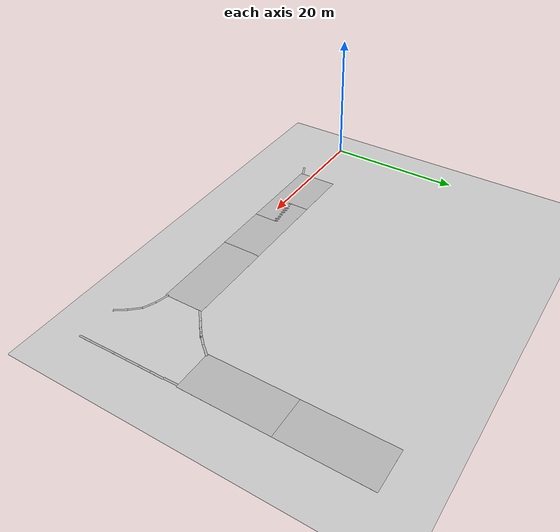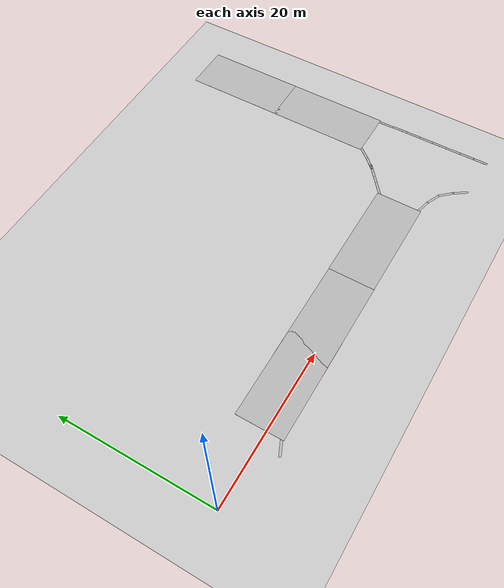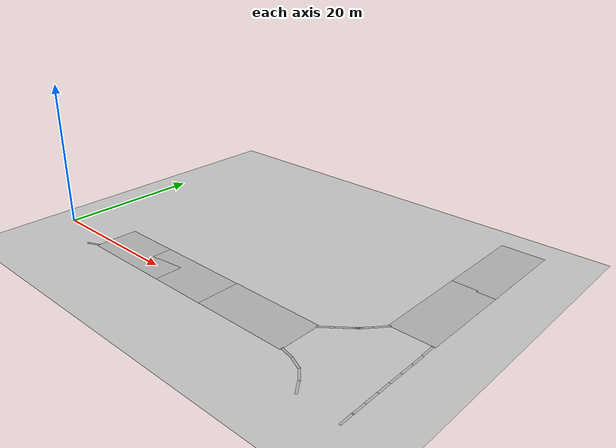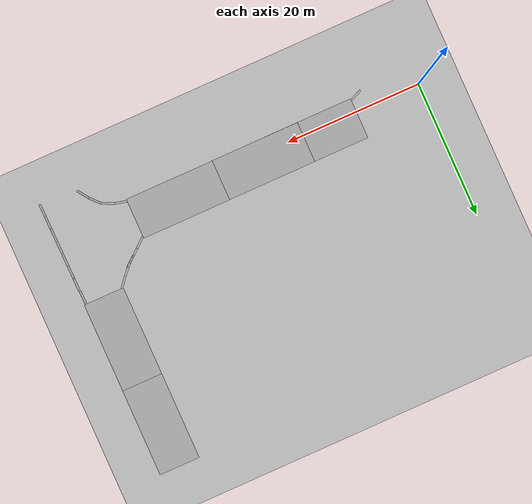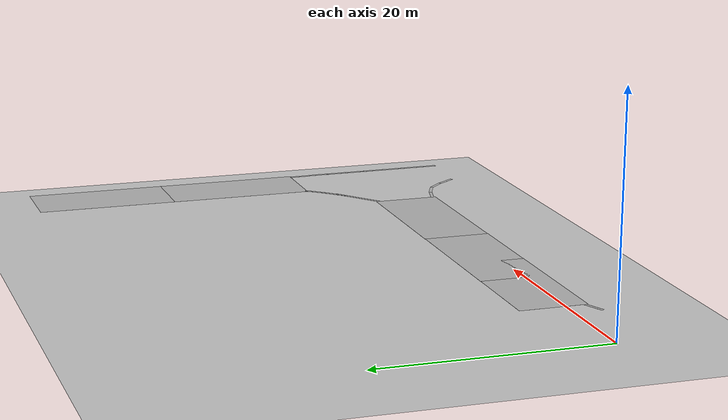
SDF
<sdf version="1.6">
 <world name="default">
  <model name="ground_plane">
   <pose>0 0 -1 0 -0 0</pose>
   <static>1</static>
   <link name="link">
    <collision name="collision">
     <geometry><plane><normal>0 0 1</normal><size>100 100</size></plane></geometry>
     <surface><friction><ode><mu>100</mu><mu2>50</mu2></ode></friction></surface>
    </collision>
    <visual name="visual">
     <cast_shadows>0</cast_shadows>
     <geometry><plane><normal>0 0 1</normal><size>100 100</size></plane></geometry>
     <material>
      <script><uri>file://media/materials/scripts/gazebo.material</uri><name>Gazebo/Grey</name></script>
     </material>
    </visual>
   </link>
  </model>
  <model name="road_4_clone_clone">
   <link name="body">
    <visual name="visual">
     <geometry><mesh><uri>file://road.dae</uri></mesh></geometry>
     <material><shader type="pixel"/></material>
    </visual>
   </link>
   <static>1</static>
   <pose>37.3595 0.974527 0 0 -0 1.57</pose>
  </model>
  <model name="road_4_clone_clone_0">
   <link name="body">
    <visual name="visual">
     <geometry><mesh><uri>file://road.dae</uri></mesh></geometry>
     <material><shader type="pixel"/></material>
    </visual>
   </link>
   <static>1</static>
   <pose>24.265 0.952006 0 0 -0 1.57</pose>
  </model>
  <model name="road_4_clone_clone_1">
   <link name="body">
    <visual name="visual">
     <geometry><mesh><uri>file://road.dae</uri></mesh></geometry>
     <material><shader type="pixel"/></material>
    </visual>
   </link>
   <static>1</static>
   <pose>16.1017 0.938572 0 0 -0 1.57</pose>
  </model>
  <model name="road_4_clone_2">
   <link name="body">
    <visual name="visual">
     <geometry><mesh><uri>file://road.dae</uri></mesh></geometry>
     <material><shader type="pixel"/></material>
    </visual>
   </link>
   <static>1</static>
   <pose>52.4051 15.7075 0 0 -0 0</pose>
  </model>
  <model name="road_4_clone_3">
   <link name="body">
    <visual name="visual">
     <geometry><mesh><uri>file://road.dae</uri></mesh></geometry>
     <material><shader type="pixel"/></material>
    </visual>
   </link>
   <static>1</static>
   <pose>52.4117 28.5897 0 0 -0 0</pose>
  </model>
  <model name="serit_s_clone_0_clone_clone">
   <link name="body">
    <visual name="visual">
     <geometry><mesh><uri>file://serit.dae</uri></mesh></geometry>
     <material><shader type="pixel"/></material>
    </visual>
   </link>
   <static>1</static>
   <pose>49.206 -5.12454 0 0 -0 0.603611</pose>
  </model>
  <model name="serit_s_clone_0_clone_1_clone">
   <link name="body">
    <visual name="visual">
     <geometry><mesh><uri>file://serit.dae</uri></mesh></geometry>
     <material><shader type="pixel"/></material>
    </visual>
   </link>
   <static>1</static>
   <pose>48.0647 -3.67821 0 0 -0 0.737264</pose>
  </model>
  <model name="serit_s_clone_0_clone_1_clone_0">
   <link name="body">
    <visual name="visual">
     <geometry><mesh><uri>file://serit.dae</uri></mesh></geometry>
     <material><shader type="pixel"/></material>
    </visual>
   </link>
   <static>1</static>
   <pose>46.5685 -2.57231 0 0 -0 1.14571</pose>
  </model>
  <model name="serit_s_clone_0_clone_1_clone_0_clone">
   <link name="body">
    <visual name="visual">
     <geometry><mesh><uri>file://serit.dae</uri></mesh></geometry>
     <material><shader type="pixel"/></material>
    </visual>
   </link>
   <static>1</static>
   <pose>44.7505 -1.92864 0 0 -0 1.31598</pose>
  </model>
  <model name="serit_s_clone_0_clone_1_clone_0_clone_2_clone_2_clone_1_clone_0_clone_5_clone_2_clone_3_clone_7_clone_3_clone_9_clone_1_clone_clone_0_clone_clone_4_clone_1_clone_clone_5_clone_14_clone_clone_clone_1">
   <link name="body">
    <visual name="visual">
     <geometry><mesh><uri>file://serit.dae</uri></mesh></geometry>
     <material><shader type="pixel"/></material>
    </visual>
   </link>
   <static>1</static>
   <pose>44.6343 4.24763 0 0 -0 2.26698</pose>
  </model>
  <model name="serit_s_clone_0_clone_1_clone_0_clone_2_clone_2_clone_1_clone_0_clone_5_clone_2_clone_3_clone_7_clone_3_clone_9_clone_1_clone_clone_0_clone_clone_4_clone_1_clone_clone_5_clone_14_clone_clone_clone_2">
   <link name="body">
    <visual name="visual">
     <geometry><mesh><uri>file://serit.dae</uri></mesh></geometry>
     <material><shader type="pixel"/></material>
    </visual>
   </link>
   <static>1</static>
   <pose>46.1141 5.46842 0 0 -0 2.26698</pose>
  </model>
  <model name="serit_s_clone_0_clone_1_clone_0_clone_2_clone_2_clone_1_clone_0_clone_5_clone_2_clone_3_clone_7_clone_3_clone_9_clone_1_clone_clone_0_clone_clone_4_clone_1_clone_clone_5_clone_14_clone_clone_clone_3">
   <link name="body">
    <visual name="visual">
     <geometry><mesh><uri>file://serit.dae</uri></mesh></geometry>
     <material><shader type="pixel"/></material>
    </visual>
   </link>
   <static>1</static>
   <pose>49.0851 8.45775 0 0 -0 2.45939</pose>
  </model>
  <model name="serit_s_clone_0_clone_1_clone_0_clone_2_clone_2_clone_1_clone_0_clone_5_clone_2_clone_3_clone_7_clone_3_clone_9_clone_1_clone_clone_0_clone_clone_4_clone_1_clone_clone_5_clone_14_clone_clone_clone_4">
   <link name="body">
    <visual name="visual">
     <geometry><mesh><uri>file://serit.dae</uri></mesh></geometry>
     <material><shader type="pixel"/></material>
    </visual>
   </link>
   <static>1</static>
   <pose>47.784 6.9917 0 0 -0 2.37811</pose>
  </model>
  <model name="serit_s_clone_0_clone_1_clone_0_clone_2_clone_2_clone_1_clone_0_clone_5_clone_2_clone_3_clone_7_clone_3_clone_9_clone_1_clone_clone_0_clone_clone_4_clone_1_clone_clone_5_clone_14_clone_clone_clone_5">
   <link name="body">
    <visual name="visual">
     <geometry><mesh><uri>file://serit.dae</uri></mesh></geometry>
     <material><shader type="pixel"/></material>
    </visual>
   </link>
   <static>1</static>
   <pose>46.9515 6.15672 0 0 -0 2.26698</pose>
  </model>
  <model name="serit_s_clone_0_clone_1_clone_0_clone_2_clone_2_clone_1_clone_0_clone_5_clone_2_clone_3_clone_7_clone_3_clone_9_clone_1_clone_clone_0_clone_clone_4_clone_1_clone_clone_5_clone_14_clone_clone_clone_12">
   <link name="body">
    <visual name="visual">
     <geometry><mesh><uri>file://serit.dae</uri></mesh></geometry>
     <material><shader type="pixel"/></material>
    </visual>
   </link>
   <static>1</static>
   <pose>8.70338 -2.14597 0 0 -0 1.99781</pose>
  </model>
  <model name="serit_s_clone_0_clone_1_clone_0_clone_2_clone_2_clone_1_clone_0_clone_5_clone_2_clone_3_clone_7_clone_3_clone_9_clone_1_clone_clone_0_clone_clone_4_clone_1_clone_clone_5_clone_14_clone_clone_clone_12_clone_5_clone_0_clone_4">
   <link name="body">
    <visual name="visual">
     <geometry><mesh><uri>file://serit.dae</uri></mesh></geometry>
     <material><shader type="pixel"/></material>
    </visual>
   </link>
   <static>1</static>
   <pose>55.1251 8.09332 0 0 -0 0.013693</pose>
  </model>
  <model name="serit_s_clone_0_clone_1_clone_0_clone_2_clone_2_clone_1_clone_0_clone_5_clone_2_clone_3_clone_7_clone_3_clone_9_clone_1_clone_clone_0_clone_clone_4_clone_1_clone_clone_5_clone_14_clone_clone_clone_12_clone_5_clone_0_clone_4_clone">
   <link name="body">
    <visual name="visual">
     <geometry><mesh><uri>file://serit.dae</uri></mesh></geometry>
     <material><shader type="pixel"/></material>
    </visual>
   </link>
   <static>1</static>
   <pose>55.2191 6.0765 0 0 -0 0.013693</pose>
  </model>
  <model name="serit_s_clone_0_clone_1_clone_0_clone_2_clone_2_clone_1_clone_0_clone_5_clone_2_clone_3_clone_7_clone_3_clone_9_clone_1_clone_clone_0_clone_clone_4_clone_1_clone_clone_5_clone_14_clone_clone_clone_12_clone_5_clone_0_clone_4_clone_0">
   <link name="body">
    <visual name="visual">
     <geometry><mesh><uri>file://serit.dae</uri></mesh></geometry>
     <material><shader type="pixel"/></material>
    </visual>
   </link>
   <static>1</static>
   <pose>55.2265 4.2407 0 0 -0 0.013693</pose>
  </model>
  <model name="serit_s_clone_0_clone_1_clone_0_clone_2_clone_2_clone_1_clone_0_clone_5_clone_2_clone_3_clone_7_clone_3_clone_9_clone_1_clone_clone_0_clone_clone_4_clone_1_clone_clone_5_clone_14_clone_clone_clone_12_clone_5_clone_0_clone_4_clone_1">
   <link name="body">
    <visual name="visual">
     <geometry><mesh><uri>file://serit.dae</uri></mesh></geometry>
     <material><shader type="pixel"/></material>
    </visual>
   </link>
   <static>1</static>
   <pose>55.2404 2.31793 0 0 -0 0.013693</pose>
  </model>
  <model name="serit_s_clone_0_clone_1_clone_0_clone_2_clone_2_clone_1_clone_0_clone_5_clone_2_clone_3_clone_7_clone_3_clone_9_clone_1_clone_clone_0_clone_clone_4_clone_1_clone_clone_5_clone_14_clone_clone_clone_12_clone_5_clone_0_clone_4_clone_2">
   <link name="body">
    <visual name="visual">
     <geometry><mesh><uri>file://serit.dae</uri></mesh></geometry>
     <material><shader type="pixel"/></material>
    </visual>
   </link>
   <static>1</static>
   <pose>55.2638 0.397011 0 0 -0 0.013693</pose>
  </model>
  <model name="serit_s_clone_0_clone_1_clone_0_clone_2_clone_2_clone_1_clone_0_clone_5_clone_2_clone_3_clone_7_clone_3_clone_9_clone_1_clone_clone_0_clone_clone_4_clone_1_clone_clone_5_clone_14_clone_clone_clone_12_clone_5_clone_0_clone_4_clone_3">
   <link name="body">
    <visual name="visual">
     <geometry><mesh><uri>file://serit.dae</uri></mesh></geometry>
     <material><shader type="pixel"/></material>
    </visual>
   </link>
   <static>1</static>
   <pose>55.2737 -1.59214 0 0 -0 0.013693</pose>
  </model>
  <model name="serit_s_clone_0_clone_1_clone_0_clone_2_clone_2_clone_1_clone_0_clone_5_clone_2_clone_3_clone_7_clone_3_clone_9_clone_1_clone_clone_0_clone_clone_4_clone_1_clone_clone_5_clone_14_clone_clone_clone_12_clone_5_clone_0_clone_4_clone_4">
   <link name="body">
    <visual name="visual">
     <geometry><mesh><uri>file://serit.dae</uri></mesh></geometry>
     <material><shader type="pixel"/></material>
    </visual>
   </link>
   <static>1</static>
   <pose>55.3087 -3.5003 0 0 -0 0.013693</pose>
  </model>
  <model name="serit_s_clone_0_clone_1_clone_0_clone_2_clone_2_clone_1_clone_0_clone_5_clone_2_clone_3_clone_7_clone_3_clone_9_clone_1_clone_clone_0_clone_clone_4_clone_1_clone_clone_5_clone_14_clone_clone_clone_12_clone_5_clone_0_clone_4_clone_5">
   <link name="body">
    <visual name="visual">
     <geometry><mesh><uri>file://serit.dae</uri></mesh></geometry>
     <material><shader type="pixel"/></material>
    </visual>
   </link>
   <static>1</static>
   <pose>55.3216 -5.31535 0 0 -0 0.013693</pose>
  </model>
 </world>
</sdf>
